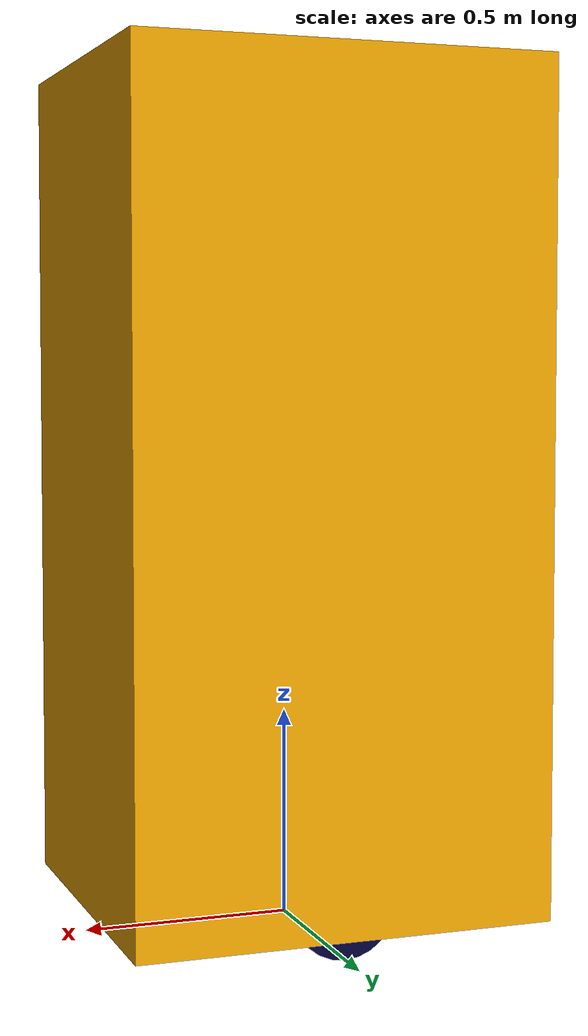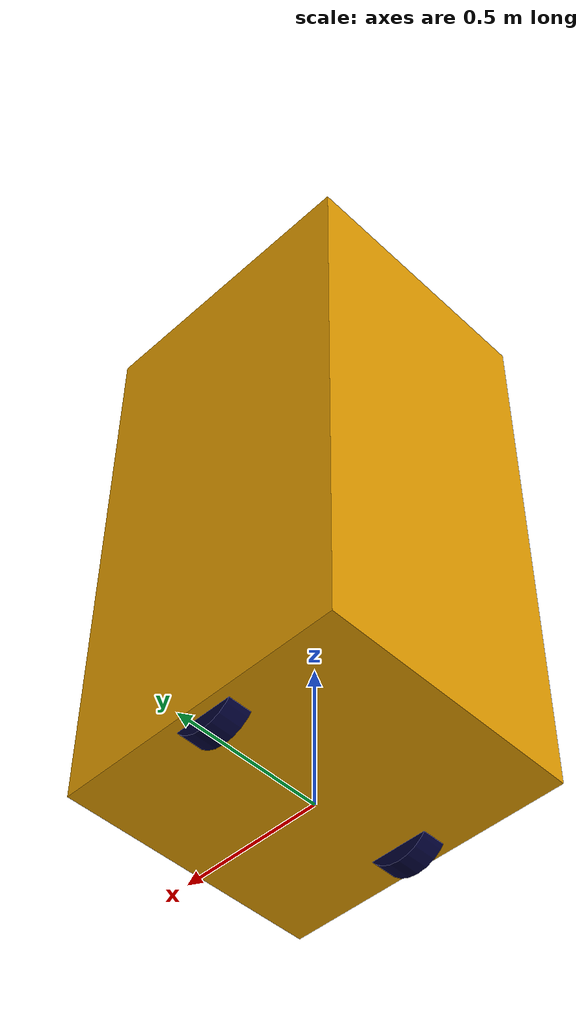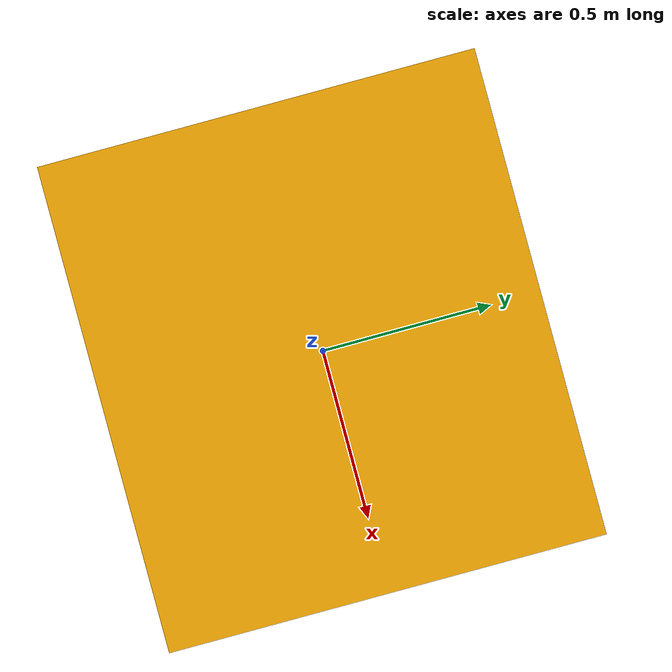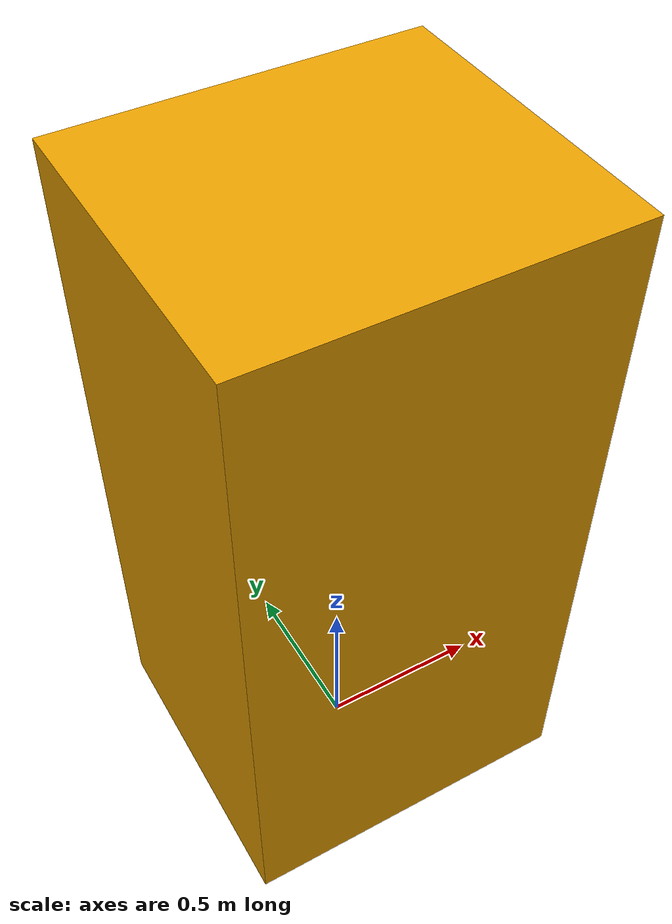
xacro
<?xml version="1.0"?>
<robot name="agv" xmlns:xacro="http://ros.org/wiki/xacro">

  <xacro:arg name="base_x_size" default="1.000" />
  <xacro:arg name="base_y_size" default="0.900" />
  <xacro:arg name="base_z_size" default="2.000" />

  <xacro:arg name="base_x_offset" default="0.000" />
  <xacro:arg name="base_z_offset" default="0.050" />

  <xacro:include filename="$(find agv_description)/urdf/agv.urdf.xacro" />
  <xacro:agv_robot />

</robot>

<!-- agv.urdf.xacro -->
<robot name="agv_robot" xmlns:xacro="http://ros.org/wiki/xacro">

  <!-- Included URDF/XACRO Files -->
  <xacro:include filename="$(find agv_description)/urdf/wheel.urdf.xacro" />
  <xacro:include filename="$(find agv_description)/urdf/materials.urdf.xacro" />

  <!-- Base Size -->
  <xacro:property name="base_x_size" value="$(arg base_x_size)" />
  <xacro:property name="base_y_size" value="$(arg base_y_size)" />
  <xacro:property name="base_z_size" value="$(arg base_z_size)" />

  <!-- offset from the base_link to the bottom of the base block -->
  <xacro:property name="base_x_offset" value="$(arg base_x_offset)" />
  <xacro:property name="base_z_offset" value="$(arg base_z_offset)" />

  <!-- Wheel Properties -->
  <xacro:property name="wheel_length" value="0.080" />
  <xacro:property name="wheel_radius" value="0.125" />

  <!-- Wheel Mounting Positions -->
  <xacro:property name="track" value="0.750" />
  <xacro:property name="wheel_vertical_offset" value="${wheel_radius}" />

  <xacro:macro name="agv_robot">

    <!-- Base link is the center of the robot's bottom plate -->
    <link name="base_link">
      <visual>
        <origin xyz="${base_x_offset} 0 ${base_z_size/2 + base_z_offset}" rpy="0 0 0" />
        <geometry>
          <box size="${base_x_size} ${base_y_size} ${base_z_size}"/>
        </geometry>
        <material name="Base" />
      </visual>
      <collision>
        <origin xyz="${base_x_offset} 0 ${base_z_size/2 + base_z_offset}" rpy="0 0 0" />
        <geometry>
          <box size="${base_x_size} ${base_y_size} ${base_z_size}"/>
        </geometry>
      </collision>
    </link>

    <!-- wheel macros -->
    <xacro:agv_wheel wheel_prefix="left">
      <origin xyz="0 ${track/2} ${wheel_vertical_offset}" rpy="0 0 0" />
    </xacro:agv_wheel>
    <xacro:agv_wheel wheel_prefix="right">
      <origin xyz="0 ${-track/2} ${wheel_vertical_offset}" rpy="0 0 0" />
    </xacro:agv_wheel>

  </xacro:macro>

</robot>

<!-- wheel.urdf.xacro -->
<robot xmlns:xacro="http://ros.org/wiki/xacro" name="agv_wheel">

  <xacro:macro name="agv_wheel" params="wheel_prefix *joint_pose">

    <link name="${wheel_prefix}_wheel_link">
      <visual>
        <origin xyz="0 0 0" rpy="${pi/2} 0 0" />
        <geometry>
          <cylinder length="${wheel_length}" radius="${wheel_radius}" />
        </geometry>
        <material name="Wheel_${wheel_prefix}" />
      </visual>
      <collision>
        <origin xyz="0 0 0" rpy="${pi/2} 0 0" />
        <geometry>
          <cylinder length="${wheel_length}" radius="${wheel_radius}" />
        </geometry>
      </collision>
    </link>

    <joint name="${wheel_prefix}_wheel" type="continuous">
      <parent link="base_link"/>
      <child link="${wheel_prefix}_wheel_link"/>
      <xacro:insert_block name="joint_pose"/>
      <axis xyz="0 1 0" rpy="0 0 0" />
    </joint>

  </xacro:macro>
</robot>

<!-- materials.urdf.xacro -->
<robot>

  <material name="Blue">
    <color rgba="0.0 0.0 0.8 1.0"/>
  </material>

  <material name="Green">
    <color rgba="0.0 0.8 0.0 1.0"/>
  </material>

  <material name="Grey">
    <color rgba="0.7 0.7 0.7 1.0"/>
  </material>

  <material name="Grey2">
    <color rgba="0.9 0.9 0.9 1.0"/>
  </material>

  <material name="Red">
    <color rgba="0.8 0.0 0.0 1.0"/>
  </material>

  <material name="White">
    <color rgba="1.0 1.0 1.0 1.0"/>
  </material>

  <material name="Black">
    <color rgba="0.1 0.1 0.1 1.0"/>
  </material>

  <material name="LightGrey">
    <color rgba="0.6 0.6 0.6 1.0"/>
  </material>

  <material name="Caster">
    <texture filename="package://agv_description/materials/textures/caster_texture.png" />
  </material>

  <material name="Base">
    <texture filename="package://agv_description/materials/textures/base_texture.png" />
  </material>

  <material name="Wheel_left">
    <color rgba="0.0 0.0 0.2 1.0"/>
  </material>

  <material name="Wheel_right">
    <color rgba="0.0 0.0 0.2 1.0"/>
  </material>

</robot>
